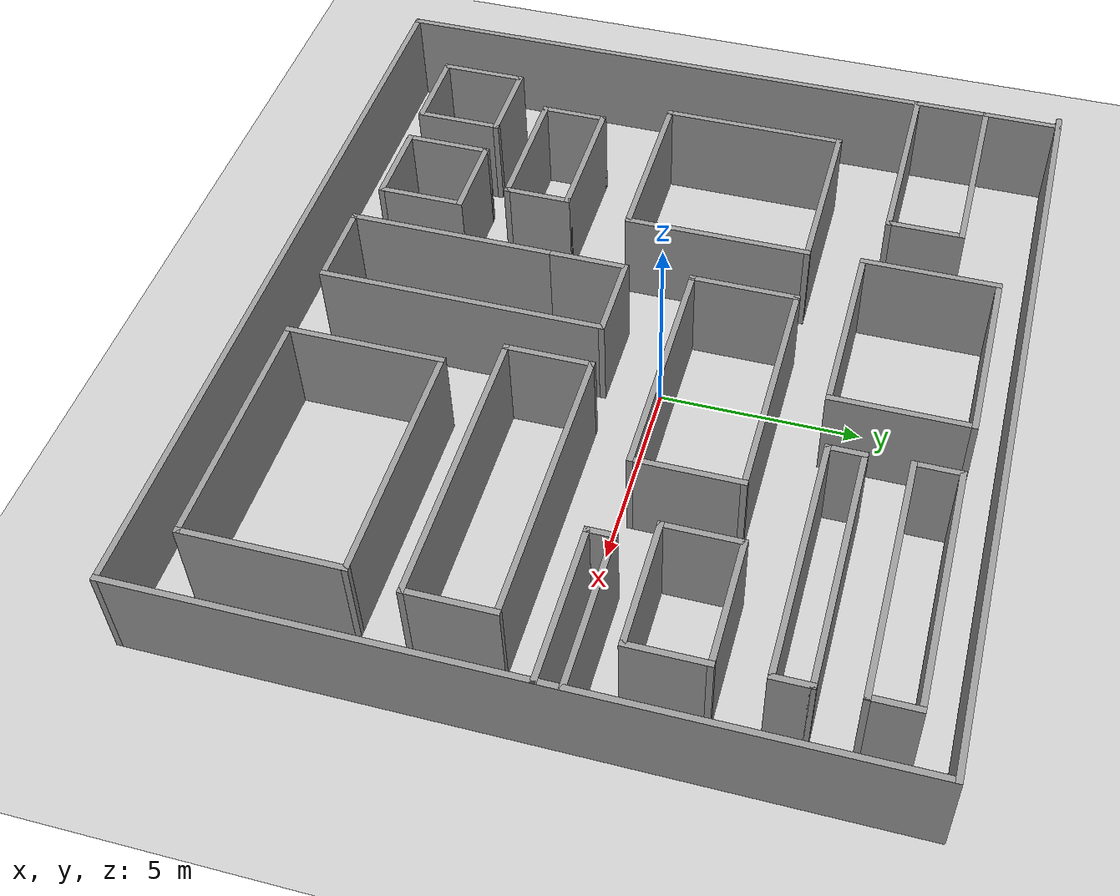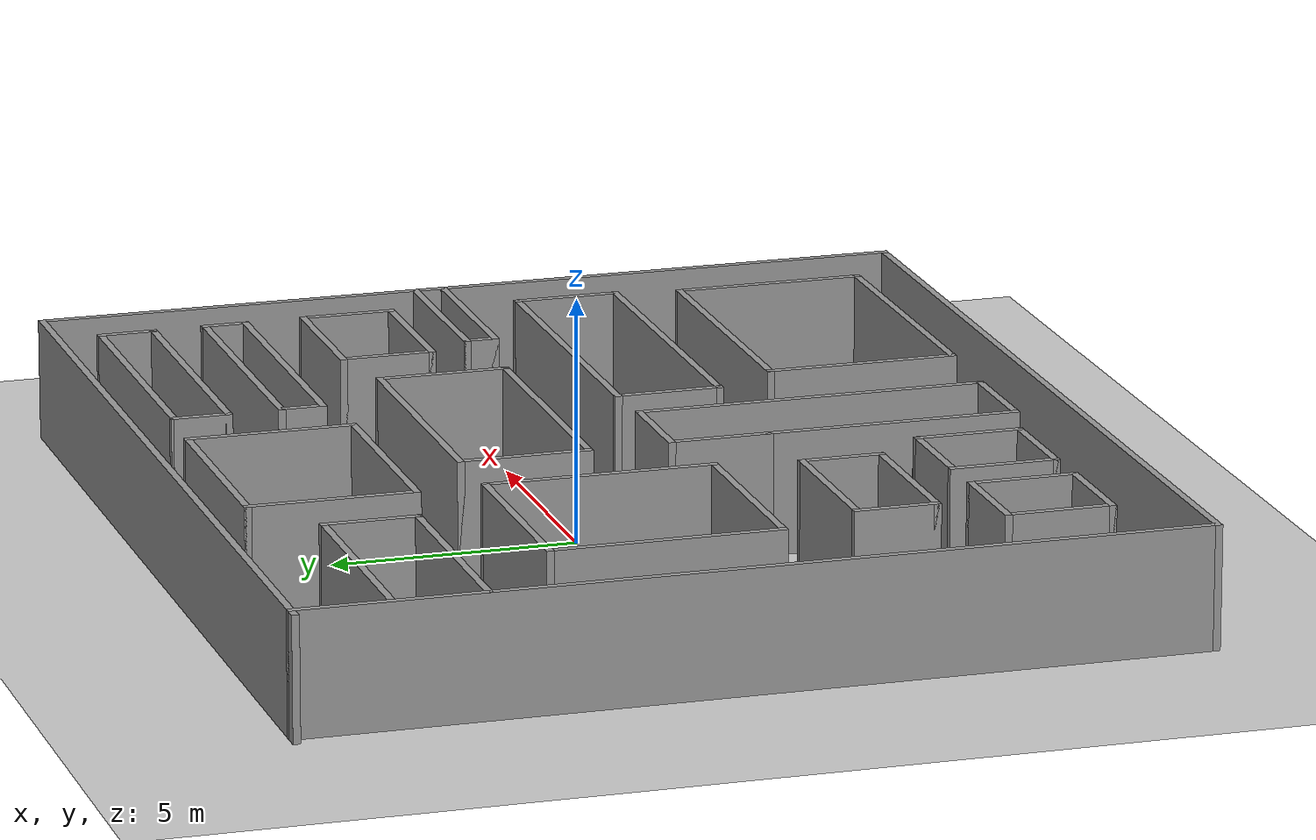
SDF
<sdf version="1.6">
 <world name="default">
  <light name="sun" type="directional">
   <pose>0 0 10 0 -0 0</pose>
   <diffuse>0.8 0.8 0.8 1</diffuse>
   <specular>0.2 0.2 0.2 1</specular>
   <attenuation>
    <range>1000</range>
    <constant>0.9</constant>
    <linear>0.01</linear>
    <quadratic>0.001</quadratic>
   </attenuation>
   <direction>-0.5 0.1 -0.9</direction>
  </light>
  <model name="ground_plane">
   <static>1</static>
   <link name="link">
    <collision name="collision">
     <geometry><plane><normal>0 0 1</normal><size>100 100</size></plane></geometry>
     <surface><friction><ode><mu>100</mu><mu2>50</mu2></ode></friction></surface>
    </collision>
    <visual name="visual">
     <cast_shadows>0</cast_shadows>
     <geometry><plane><normal>0 0 1</normal><size>100 100</size></plane></geometry>
     <material>
      <script><uri>file://media/materials/scripts/gazebo.material</uri><name>Gazebo/Grey</name></script>
     </material>
    </visual>
   </link>
  </model>
  <gravity>0 0 -9.8</gravity>
  <magnetic_field>6e-06 2.3e-05 -4.2e-05</magnetic_field>
  <atmosphere type="adiabatic"/>
  <physics name="default_physics" default="0" type="ode">
   <max_step_size>0.001</max_step_size>
   <real_time_factor>1</real_time_factor>
   <real_time_update_rate>1000</real_time_update_rate>
  </physics>
  <scene><ambient>0.4 0.4 0.4 1</ambient><background>0.7 0.7 0.7 1</background><shadows>1</shadows></scene>
  <spherical_coordinates>
   <surface_model>EARTH_WGS84</surface_model>
   <latitude_deg>0</latitude_deg>
   <longitude_deg>0</longitude_deg>
   <elevation>0</elevation>
   <heading_deg>0</heading_deg>
  </spherical_coordinates>
  <model name="PathifyMap1">
   <pose>-0.083684 -0.647717 0 0 -0 0</pose>
   <link name="Wall_100">
    <collision name="Wall_100_Collision">
     <geometry><box><size>3.25 0.15 2.5</size></box></geometry>
     <pose>0 0 1.25 0 -0 0</pose>
    </collision>
    <visual name="Wall_100_Visual">
     <pose>0 0 1.25 0 -0 0</pose>
     <geometry><box><size>3.25 0.15 2.5</size></box></geometry>
     <material>
      <script><uri>file://media/materials/scripts/gazebo.material</uri><name>Gazebo/Grey</name></script>
      <ambient>1 1 1 1</ambient>
     </material>
     <meta><layer>0</layer></meta>
    </visual>
    <pose>7.20719 3.89076 0 0 -0 3.14159</pose>
   </link>
   <link name="Wall_102">
    <collision name="Wall_102_Collision">
     <geometry><box><size>4 0.15 2.5</size></box></geometry>
     <pose>0 0 1.25 0 -0 0</pose>
    </collision>
    <visual name="Wall_102_Visual">
     <pose>0 0 1.25 0 -0 0</pose>
     <geometry><box><size>4 0.15 2.5</size></box></geometry>
     <material>
      <script><uri>file://media/materials/scripts/gazebo.material</uri><name>Gazebo/Grey</name></script>
      <ambient>1 1 1 1</ambient>
     </material>
     <meta><layer>0</layer></meta>
    </visual>
    <pose>8.1244 1.15549 0 0 -0 3.14159</pose>
   </link>
   <link name="Wall_103">
    <collision name="Wall_103_Collision">
     <geometry><box><size>0.75 0.15 2.5</size></box></geometry>
     <pose>0 0 1.25 0 -0 0</pose>
    </collision>
    <visual name="Wall_103_Visual">
     <pose>0 0 1.25 0 -0 0</pose>
     <geometry><box><size>0.75 0.15 2.5</size></box></geometry>
     <material>
      <script><uri>file://media/materials/scripts/gazebo.material</uri><name>Gazebo/Grey</name></script>
      <ambient>1 1 1 1</ambient>
     </material>
     <meta><layer>0</layer></meta>
    </visual>
    <pose>6.1994 0.855492 0 0 0 -1.5708</pose>
   </link>
   <link name="Wall_104">
    <collision name="Wall_104_Collision">
     <geometry><box><size>4 0.15 2.5</size></box></geometry>
     <pose>0 0 1.25 0 -0 0</pose>
    </collision>
    <visual name="Wall_104_Visual">
     <pose>0 0 1.25 0 -0 0</pose>
     <geometry><box><size>4 0.15 2.5</size></box></geometry>
     <material>
      <script><uri>file://media/materials/scripts/gazebo.material</uri><name>Gazebo/Grey</name></script>
      <ambient>1 1 1 1</ambient>
     </material>
     <meta><layer>0</layer></meta>
    </visual>
    <pose>8.1244 0.555492 0 0 -0 0</pose>
   </link>
   <link name="Wall_20">
    <collision name="Wall_20_Collision">
     <geometry><box><size>20.25 0.15 2.5</size></box></geometry>
     <pose>0 0 1.25 0 -0 0</pose>
    </collision>
    <visual name="Wall_20_Visual">
     <pose>0 0 1.25 0 -0 0</pose>
     <geometry><box><size>20.25 0.15 2.5</size></box></geometry>
     <material>
      <script><uri>file://media/materials/scripts/gazebo.material</uri><name>Gazebo/Grey</name></script>
      <ambient>1 1 1 1</ambient>
     </material>
     <meta><layer>0</layer></meta>
    </visual>
    <pose>0 9.05 0 0 -0 0</pose>
   </link>
   <link name="Wall_21">
    <collision name="Wall_21_Collision">
     <geometry><box><size>18.25 0.15 2.5</size></box></geometry>
     <pose>0 0 1.25 0 -0 0</pose>
    </collision>
    <visual name="Wall_21_Visual">
     <pose>0 0 1.25 0 -0 0</pose>
     <geometry><box><size>18.25 0.15 2.5</size></box></geometry>
     <material>
      <script><uri>file://media/materials/scripts/gazebo.material</uri><name>Gazebo/Grey</name></script>
      <ambient>1 1 1 1</ambient>
     </material>
     <meta><layer>0</layer></meta>
    </visual>
    <pose>10.05 0 0 0 0 -1.5708</pose>
   </link>
   <link name="Wall_22">
    <collision name="Wall_22_Collision">
     <geometry><box><size>20 0.15 2.5</size></box></geometry>
     <pose>0 0 1.25 0 -0 0</pose>
    </collision>
    <visual name="Wall_22_Visual">
     <pose>0 0 1.25 0 -0 0</pose>
     <geometry><box><size>20 0.15 2.5</size></box></geometry>
     <material>
      <script><uri>file://media/materials/scripts/gazebo.material</uri><name>Gazebo/Grey</name></script>
      <ambient>1 1 1 1</ambient>
     </material>
     <meta><layer>0</layer></meta>
    </visual>
    <pose>0.125 -9.05 0 0 -0 3.14159</pose>
   </link>
   <link name="Wall_23">
    <collision name="Wall_23_Collision">
     <geometry><box><size>18.25 0.15 2.5</size></box></geometry>
     <pose>0 0 1.25 0 -0 0</pose>
    </collision>
    <visual name="Wall_23_Visual">
     <pose>0 0 1.25 0 -0 0</pose>
     <geometry><box><size>18.25 0.15 2.5</size></box></geometry>
     <material>
      <script><uri>file://media/materials/scripts/gazebo.material</uri><name>Gazebo/Grey</name></script>
      <ambient>1 1 1 1</ambient>
     </material>
     <meta><layer>0</layer></meta>
    </visual>
    <pose>-9.8 0 0 0 -0 1.5708</pose>
   </link>
   <link name="Wall_30">
    <collision name="Wall_30_Collision">
     <geometry><box><size>2.25 0.15 2.5</size></box></geometry>
     <pose>0 0 1.25 0 -0 0</pose>
    </collision>
    <visual name="Wall_30_Visual">
     <pose>0 0 1.25 0 -0 0</pose>
     <geometry><box><size>2.25 0.15 2.5</size></box></geometry>
     <material>
      <script><uri>file://media/materials/scripts/gazebo.material</uri><name>Gazebo/Grey</name></script>
      <ambient>1 1 1 1</ambient>
     </material>
     <meta><layer>0</layer></meta>
    </visual>
    <pose>-7.00655 -7.5586 0 0 -0 0</pose>
   </link>
   <link name="Wall_31">
    <collision name="Wall_31_Collision">
     <geometry><box><size>2.25 0.15 2.5</size></box></geometry>
     <pose>0 0 1.25 0 -0 0</pose>
    </collision>
    <visual name="Wall_31_Visual">
     <pose>0 0 1.25 0 -0 0</pose>
     <geometry><box><size>2.25 0.15 2.5</size></box></geometry>
     <material>
      <script><uri>file://media/materials/scripts/gazebo.material</uri><name>Gazebo/Grey</name></script>
      <ambient>1 1 1 1</ambient>
     </material>
     <meta><layer>0</layer></meta>
    </visual>
    <pose>-5.95655 -6.5086 0 0 -0 1.5708</pose>
   </link>
   <link name="Wall_32">
    <collision name="Wall_32_Collision">
     <geometry><box><size>2.25 0.15 2.5</size></box></geometry>
     <pose>0 0 1.25 0 -0 0</pose>
    </collision>
    <visual name="Wall_32_Visual">
     <pose>0 0 1.25 0 -0 0</pose>
     <geometry><box><size>2.25 0.15 2.5</size></box></geometry>
     <material>
      <script><uri>file://media/materials/scripts/gazebo.material</uri><name>Gazebo/Grey</name></script>
      <ambient>1 1 1 1</ambient>
     </material>
     <meta><layer>0</layer></meta>
    </visual>
    <pose>-7.00655 -5.4586 0 0 -0 3.14159</pose>
   </link>
   <link name="Wall_33">
    <collision name="Wall_33_Collision">
     <geometry><box><size>2.25 0.15 2.5</size></box></geometry>
     <pose>0 0 1.25 0 -0 0</pose>
    </collision>
    <visual name="Wall_33_Visual">
     <pose>0 0 1.25 0 -0 0</pose>
     <geometry><box><size>2.25 0.15 2.5</size></box></geometry>
     <material>
      <script><uri>file://media/materials/scripts/gazebo.material</uri><name>Gazebo/Grey</name></script>
      <ambient>1 1 1 1</ambient>
     </material>
     <meta><layer>0</layer></meta>
    </visual>
    <pose>-8.05655 -6.5086 0 0 0 -1.5708</pose>
   </link>
   <link name="Wall_36">
    <collision name="Wall_36_Collision">
     <geometry><box><size>2.25 0.15 2.5</size></box></geometry>
     <pose>0 0 1.25 0 -0 0</pose>
    </collision>
    <visual name="Wall_36_Visual">
     <pose>0 0 1.25 0 -0 0</pose>
     <geometry><box><size>2.25 0.15 2.5</size></box></geometry>
     <material>
      <script><uri>file://media/materials/scripts/gazebo.material</uri><name>Gazebo/Grey</name></script>
      <ambient>1 1 1 1</ambient>
     </material>
     <meta><layer>0</layer></meta>
    </visual>
    <pose>-3.89848 -5.42383 0 0 -0 0</pose>
   </link>
   <link name="Wall_37">
    <collision name="Wall_37_Collision">
     <geometry><box><size>2.25 0.15 2.5</size></box></geometry>
     <pose>0 0 1.25 0 -0 0</pose>
    </collision>
    <visual name="Wall_37_Visual">
     <pose>0 0 1.25 0 -0 0</pose>
     <geometry><box><size>2.25 0.15 2.5</size></box></geometry>
     <material>
      <script><uri>file://media/materials/scripts/gazebo.material</uri><name>Gazebo/Grey</name></script>
      <ambient>1 1 1 1</ambient>
     </material>
     <meta><layer>0</layer></meta>
    </visual>
    <pose>-2.84848 -6.47383 0 0 0 -1.5708</pose>
   </link>
   <link name="Wall_38">
    <collision name="Wall_38_Collision">
     <geometry><box><size>2.25 0.15 2.5</size></box></geometry>
     <pose>0 0 1.25 0 -0 0</pose>
    </collision>
    <visual name="Wall_38_Visual">
     <pose>0 0 1.25 0 -0 0</pose>
     <geometry><box><size>2.25 0.15 2.5</size></box></geometry>
     <material>
      <script><uri>file://media/materials/scripts/gazebo.material</uri><name>Gazebo/Grey</name></script>
      <ambient>1 1 1 1</ambient>
     </material>
     <meta><layer>0</layer></meta>
    </visual>
    <pose>-3.89848 -7.52383 0 0 -0 3.14159</pose>
   </link>
   <link name="Wall_39">
    <collision name="Wall_39_Collision">
     <geometry><box><size>2.25 0.15 2.5</size></box></geometry>
     <pose>0 0 1.25 0 -0 0</pose>
    </collision>
    <visual name="Wall_39_Visual">
     <pose>0 0 1.25 0 -0 0</pose>
     <geometry><box><size>2.25 0.15 2.5</size></box></geometry>
     <material>
      <script><uri>file://media/materials/scripts/gazebo.material</uri><name>Gazebo/Grey</name></script>
      <ambient>1 1 1 1</ambient>
     </material>
     <meta><layer>0</layer></meta>
    </visual>
    <pose>-4.94848 -6.47383 0 0 -0 1.5708</pose>
   </link>
   <link name="Wall_41">
    <collision name="Wall_41_Collision">
     <geometry><box><size>3.5 0.15 2.5</size></box></geometry>
     <pose>0 0 1.25 0 -0 0</pose>
    </collision>
    <visual name="Wall_41_Visual">
     <pose>0 0 1.25 0 -0 0</pose>
     <geometry><box><size>3.5 0.15 2.5</size></box></geometry>
     <material>
      <script><uri>file://media/materials/scripts/gazebo.material</uri><name>Gazebo/Grey</name></script>
      <ambient>1 1 1 1</ambient>
     </material>
     <meta><layer>0</layer></meta>
    </visual>
    <pose>-5.32185 -2.79874 0 0 -0 0</pose>
   </link>
   <link name="Wall_42">
    <collision name="Wall_42_Collision">
     <geometry><box><size>1.75 0.15 2.5</size></box></geometry>
     <pose>0 0 1.25 0 -0 0</pose>
    </collision>
    <visual name="Wall_42_Visual">
     <pose>0 0 1.25 0 -0 0</pose>
     <geometry><box><size>1.75 0.15 2.5</size></box></geometry>
     <material>
      <script><uri>file://media/materials/scripts/gazebo.material</uri><name>Gazebo/Grey</name></script>
      <ambient>1 1 1 1</ambient>
     </material>
     <meta><layer>0</layer></meta>
    </visual>
    <pose>-3.64685 -3.59874 0 0 0 -1.5708</pose>
   </link>
   <link name="Wall_43">
    <collision name="Wall_43_Collision">
     <geometry><box><size>3.5 0.15 2.5</size></box></geometry>
     <pose>0 0 1.25 0 -0 0</pose>
    </collision>
    <visual name="Wall_43_Visual">
     <pose>0 0 1.25 0 -0 0</pose>
     <geometry><box><size>3.5 0.15 2.5</size></box></geometry>
     <material>
      <script><uri>file://media/materials/scripts/gazebo.material</uri><name>Gazebo/Grey</name></script>
      <ambient>1 1 1 1</ambient>
     </material>
     <meta><layer>0</layer></meta>
    </visual>
    <pose>-5.32185 -4.39874 0 0 -0 3.14159</pose>
   </link>
   <link name="Wall_44">
    <collision name="Wall_44_Collision">
     <geometry><box><size>1.75 0.15 2.5</size></box></geometry>
     <pose>0 0 1.25 0 -0 0</pose>
    </collision>
    <visual name="Wall_44_Visual">
     <pose>0 0 1.25 0 -0 0</pose>
     <geometry><box><size>1.75 0.15 2.5</size></box></geometry>
     <material>
      <script><uri>file://media/materials/scripts/gazebo.material</uri><name>Gazebo/Grey</name></script>
      <ambient>1 1 1 1</ambient>
     </material>
     <meta><layer>0</layer></meta>
    </visual>
    <pose>-6.99685 -3.59874 0 0 -0 1.5708</pose>
   </link>
   <link name="Wall_49">
    <collision name="Wall_49_Collision">
     <geometry><box><size>5.25 0.15 2.5</size></box></geometry>
     <pose>0 0 1.25 0 -0 0</pose>
    </collision>
    <visual name="Wall_49_Visual">
     <pose>0 0 1.25 0 -0 0</pose>
     <geometry><box><size>5.25 0.15 2.5</size></box></geometry>
     <material>
      <script><uri>file://media/materials/scripts/gazebo.material</uri><name>Gazebo/Grey</name></script>
      <ambient>1 1 1 1</ambient>
     </material>
     <meta><layer>0</layer></meta>
    </visual>
    <pose>-1.70689 -5.28908 0 0 0 -1.5708</pose>
   </link>
   <link name="Wall_50">
    <collision name="Wall_50_Collision">
     <geometry><box><size>2.25 0.15 2.5</size></box></geometry>
     <pose>0 0 1.25 0 -0 0</pose>
    </collision>
    <visual name="Wall_50_Visual">
     <pose>0 0 1.25 0 -0 0</pose>
     <geometry><box><size>2.25 0.15 2.5</size></box></geometry>
     <material>
      <script><uri>file://media/materials/scripts/gazebo.material</uri><name>Gazebo/Grey</name></script>
      <ambient>1 1 1 1</ambient>
     </material>
     <meta><layer>0</layer></meta>
    </visual>
    <pose>-0.656888 -7.83908 0 0 -0 0</pose>
   </link>
   <link name="Wall_51">
    <collision name="Wall_51_Collision">
     <geometry><box><size>7.25 0.15 2.5</size></box></geometry>
     <pose>0 0 1.25 0 -0 0</pose>
    </collision>
    <visual name="Wall_51_Visual">
     <pose>0 0 1.25 0 -0 0</pose>
     <geometry><box><size>7.25 0.15 2.5</size></box></geometry>
     <material>
      <script><uri>file://media/materials/scripts/gazebo.material</uri><name>Gazebo/Grey</name></script>
      <ambient>1 1 1 1</ambient>
     </material>
     <meta><layer>0</layer></meta>
    </visual>
    <pose>0.393112 -4.28908 0 0 -0 1.5708</pose>
   </link>
   <link name="Wall_52">
    <collision name="Wall_52_Collision">
     <geometry><box><size>2.25 0.15 2.5</size></box></geometry>
     <pose>0 0 1.25 0 -0 0</pose>
    </collision>
    <visual name="Wall_52_Visual">
     <pose>0 0 1.25 0 -0 0</pose>
     <geometry><box><size>2.25 0.15 2.5</size></box></geometry>
     <material>
      <script><uri>file://media/materials/scripts/gazebo.material</uri><name>Gazebo/Grey</name></script>
      <ambient>1 1 1 1</ambient>
     </material>
     <meta><layer>0</layer></meta>
    </visual>
    <pose>-0.656888 -0.739077 0 0 -0 3.14159</pose>
   </link>
   <link name="Wall_53">
    <collision name="Wall_53_Collision">
     <geometry><box><size>2.15 0.15 2.5</size></box></geometry>
     <pose>0 0 1.25 0 -0 0</pose>
    </collision>
    <visual name="Wall_53_Visual">
     <pose>0 0 1.25 0 -0 0</pose>
     <geometry><box><size>2.15 0.15 2.5</size></box></geometry>
     <material>
      <script><uri>file://media/materials/scripts/gazebo.material</uri><name>Gazebo/Grey</name></script>
      <ambient>1 1 1 1</ambient>
     </material>
     <meta><layer>0</layer></meta>
    </visual>
    <pose>-1.70689 -1.73908 0 0 0 -1.5708</pose>
   </link>
   <link name="Wall_55">
    <collision name="Wall_55_Collision">
     <geometry><box><size>7.25 0.15 2.5</size></box></geometry>
     <pose>0 0 1.25 0 -0 0</pose>
    </collision>
    <visual name="Wall_55_Visual">
     <pose>0 0 1.25 0 -0 0</pose>
     <geometry><box><size>7.25 0.15 2.5</size></box></geometry>
     <material>
      <script><uri>file://media/materials/scripts/gazebo.material</uri><name>Gazebo/Grey</name></script>
      <ambient>1 1 1 1</ambient>
     </material>
     <meta><layer>0</layer></meta>
    </visual>
    <pose>5.14437 -0.650934 0 0 -0 0</pose>
   </link>
   <link name="Wall_56">
    <collision name="Wall_56_Collision">
     <geometry><box><size>2.25 0.15 2.5</size></box></geometry>
     <pose>0 0 1.25 0 -0 0</pose>
    </collision>
    <visual name="Wall_56_Visual">
     <pose>0 0 1.25 0 -0 0</pose>
     <geometry><box><size>2.25 0.15 2.5</size></box></geometry>
     <material>
      <script><uri>file://media/materials/scripts/gazebo.material</uri><name>Gazebo/Grey</name></script>
      <ambient>1 1 1 1</ambient>
     </material>
     <meta><layer>0</layer></meta>
    </visual>
    <pose>8.69437 -1.70093 0 0 0 -1.5708</pose>
   </link>
   <link name="Wall_57">
    <collision name="Wall_57_Collision">
     <geometry><box><size>7.25 0.15 2.5</size></box></geometry>
     <pose>0 0 1.25 0 -0 0</pose>
    </collision>
    <visual name="Wall_57_Visual">
     <pose>0 0 1.25 0 -0 0</pose>
     <geometry><box><size>7.25 0.15 2.5</size></box></geometry>
     <material>
      <script><uri>file://media/materials/scripts/gazebo.material</uri><name>Gazebo/Grey</name></script>
      <ambient>1 1 1 1</ambient>
     </material>
     <meta><layer>0</layer></meta>
    </visual>
    <pose>5.14437 -2.75093 0 0 -0 3.14159</pose>
   </link>
   <link name="Wall_58">
    <collision name="Wall_58_Collision">
     <geometry><box><size>2.25 0.15 2.5</size></box></geometry>
     <pose>0 0 1.25 0 -0 0</pose>
    </collision>
    <visual name="Wall_58_Visual">
     <pose>0 0 1.25 0 -0 0</pose>
     <geometry><box><size>2.25 0.15 2.5</size></box></geometry>
     <material>
      <script><uri>file://media/materials/scripts/gazebo.material</uri><name>Gazebo/Grey</name></script>
      <ambient>1 1 1 1</ambient>
     </material>
     <meta><layer>0</layer></meta>
    </visual>
    <pose>1.59437 -1.70093 0 0 -0 1.5708</pose>
   </link>
   <link name="Wall_62">
    <collision name="Wall_62_Collision">
     <geometry><box><size>4 0.15 2.5</size></box></geometry>
     <pose>0 0 1.25 0 -0 0</pose>
    </collision>
    <visual name="Wall_62_Visual">
     <pose>0 0 1.25 0 -0 0</pose>
     <geometry><box><size>4 0.15 2.5</size></box></geometry>
     <material>
      <script><uri>file://media/materials/scripts/gazebo.material</uri><name>Gazebo/Grey</name></script>
      <ambient>1 1 1 1</ambient>
     </material>
     <meta><layer>0</layer></meta>
    </visual>
    <pose>2.36996 -5.99651 0 0 0 -1.5708</pose>
   </link>
   <link name="Wall_63">
    <collision name="Wall_63_Collision">
     <geometry><box><size>6.25 0.15 2.5</size></box></geometry>
     <pose>0 0 1.25 0 -0 0</pose>
    </collision>
    <visual name="Wall_63_Visual">
     <pose>0 0 1.25 0 -0 0</pose>
     <geometry><box><size>6.25 0.15 2.5</size></box></geometry>
     <material>
      <script><uri>file://media/materials/scripts/gazebo.material</uri><name>Gazebo/Grey</name></script>
      <ambient>1 1 1 1</ambient>
     </material>
     <meta><layer>0</layer></meta>
    </visual>
    <pose>5.41996 -7.92151 0 0 -0 0</pose>
   </link>
   <link name="Wall_64">
    <collision name="Wall_64_Collision">
     <geometry><box><size>4 0.15 2.5</size></box></geometry>
     <pose>0 0 1.25 0 -0 0</pose>
    </collision>
    <visual name="Wall_64_Visual">
     <pose>0 0 1.25 0 -0 0</pose>
     <geometry><box><size>4 0.15 2.5</size></box></geometry>
     <material>
      <script><uri>file://media/materials/scripts/gazebo.material</uri><name>Gazebo/Grey</name></script>
      <ambient>1 1 1 1</ambient>
     </material>
     <meta><layer>0</layer></meta>
    </visual>
    <pose>8.46996 -5.99651 0 0 -0 1.5708</pose>
   </link>
   <link name="Wall_65">
    <collision name="Wall_65_Collision">
     <geometry><box><size>6.25 0.15 2.5</size></box></geometry>
     <pose>0 0 1.25 0 -0 0</pose>
    </collision>
    <visual name="Wall_65_Visual">
     <pose>0 0 1.25 0 -0 0</pose>
     <geometry><box><size>6.25 0.15 2.5</size></box></geometry>
     <material>
      <script><uri>file://media/materials/scripts/gazebo.material</uri><name>Gazebo/Grey</name></script>
      <ambient>1 1 1 1</ambient>
     </material>
     <meta><layer>0</layer></meta>
    </visual>
    <pose>5.41996 -4.07151 0 0 -0 3.14159</pose>
   </link>
   <link name="Wall_67">
    <collision name="Wall_67_Collision">
     <geometry><box><size>4.75 0.15 2.5</size></box></geometry>
     <pose>0 0 1.25 0 -0 0</pose>
    </collision>
    <visual name="Wall_67_Visual">
     <pose>0 0 1.25 0 -0 0</pose>
     <geometry><box><size>4.75 0.15 2.5</size></box></geometry>
     <material>
      <script><uri>file://media/materials/scripts/gazebo.material</uri><name>Gazebo/Grey</name></script>
      <ambient>1 1 1 1</ambient>
     </material>
     <meta><layer>0</layer></meta>
    </visual>
    <pose>-7.70354 1.19625 0 0 0 -1.5708</pose>
   </link>
   <link name="Wall_68">
    <collision name="Wall_68_Collision">
     <geometry><box><size>4.5 0.15 2.5</size></box></geometry>
     <pose>0 0 1.25 0 -0 0</pose>
    </collision>
    <visual name="Wall_68_Visual">
     <pose>0 0 1.25 0 -0 0</pose>
     <geometry><box><size>4.5 0.15 2.5</size></box></geometry>
     <material>
      <script><uri>file://media/materials/scripts/gazebo.material</uri><name>Gazebo/Grey</name></script>
      <ambient>1 1 1 1</ambient>
     </material>
     <meta><layer>0</layer></meta>
    </visual>
    <pose>-5.52854 -1.10375 0 0 -0 0</pose>
   </link>
   <link name="Wall_69">
    <collision name="Wall_69_Collision">
     <geometry><box><size>4.75 0.15 2.5</size></box></geometry>
     <pose>0 0 1.25 0 -0 0</pose>
    </collision>
    <visual name="Wall_69_Visual">
     <pose>0 0 1.25 0 -0 0</pose>
     <geometry><box><size>4.75 0.15 2.5</size></box></geometry>
     <material>
      <script><uri>file://media/materials/scripts/gazebo.material</uri><name>Gazebo/Grey</name></script>
      <ambient>1 1 1 1</ambient>
     </material>
     <meta><layer>0</layer></meta>
    </visual>
    <pose>-3.35354 1.19625 0 0 -0 1.5708</pose>
   </link>
   <link name="Wall_70">
    <collision name="Wall_70_Collision">
     <geometry><box><size>4.5 0.15 2.5</size></box></geometry>
     <pose>0 0 1.25 0 -0 0</pose>
    </collision>
    <visual name="Wall_70_Visual">
     <pose>0 0 1.25 0 -0 0</pose>
     <geometry><box><size>4.5 0.15 2.5</size></box></geometry>
     <material>
      <script><uri>file://media/materials/scripts/gazebo.material</uri><name>Gazebo/Grey</name></script>
      <ambient>1 1 1 1</ambient>
     </material>
     <meta><layer>0</layer></meta>
    </visual>
    <pose>-5.52854 3.49625 0 0 -0 3.14159</pose>
   </link>
   <link name="Wall_72">
    <collision name="Wall_72_Collision">
     <geometry><box><size>2.75 0.15 2.5</size></box></geometry>
     <pose>0 0 1.25 0 -0 0</pose>
    </collision>
    <visual name="Wall_72_Visual">
     <pose>0 0 1.25 0 -0 0</pose>
     <geometry><box><size>2.75 0.15 2.5</size></box></geometry>
     <material>
      <script><uri>file://media/materials/scripts/gazebo.material</uri><name>Gazebo/Grey</name></script>
      <ambient>1 1 1 1</ambient>
     </material>
     <meta><layer>0</layer></meta>
    </visual>
    <pose>-1.75959 2.24885 0 0 0 -1.5708</pose>
   </link>
   <link name="Wall_73">
    <collision name="Wall_73_Collision">
     <geometry><box><size>6 0.15 2.5</size></box></geometry>
     <pose>0 0 1.25 0 -0 0</pose>
    </collision>
    <visual name="Wall_73_Visual">
     <pose>0 0 1.25 0 -0 0</pose>
     <geometry><box><size>6 0.15 2.5</size></box></geometry>
     <material>
      <script><uri>file://media/materials/scripts/gazebo.material</uri><name>Gazebo/Grey</name></script>
      <ambient>1 1 1 1</ambient>
     </material>
     <meta><layer>0</layer></meta>
    </visual>
    <pose>1.16541 0.948851 0 0 -0 0</pose>
   </link>
   <link name="Wall_74">
    <collision name="Wall_74_Collision">
     <geometry><box><size>2.75 0.15 2.5</size></box></geometry>
     <pose>0 0 1.25 0 -0 0</pose>
    </collision>
    <visual name="Wall_74_Visual">
     <pose>0 0 1.25 0 -0 0</pose>
     <geometry><box><size>2.75 0.15 2.5</size></box></geometry>
     <material>
      <script><uri>file://media/materials/scripts/gazebo.material</uri><name>Gazebo/Grey</name></script>
      <ambient>1 1 1 1</ambient>
     </material>
     <meta><layer>0</layer></meta>
    </visual>
    <pose>4.0904 2.24885 0 0 -0 1.5708</pose>
   </link>
   <link name="Wall_75">
    <collision name="Wall_75_Collision">
     <geometry><box><size>6 0.15 2.5</size></box></geometry>
     <pose>0 0 1.25 0 -0 0</pose>
    </collision>
    <visual name="Wall_75_Visual">
     <pose>0 0 1.25 0 -0 0</pose>
     <geometry><box><size>6 0.15 2.5</size></box></geometry>
     <material>
      <script><uri>file://media/materials/scripts/gazebo.material</uri><name>Gazebo/Grey</name></script>
      <ambient>1 1 1 1</ambient>
     </material>
     <meta><layer>0</layer></meta>
    </visual>
    <pose>1.16541 3.54885 0 0 -0 3.14159</pose>
   </link>
   <link name="Wall_77">
    <collision name="Wall_77_Collision">
     <geometry><box><size>5 0.15 2.5</size></box></geometry>
     <pose>0 0 1.25 0 -0 0</pose>
    </collision>
    <visual name="Wall_77_Visual">
     <pose>0 0 1.25 0 -0 0</pose>
     <geometry><box><size>5 0.15 2.5</size></box></geometry>
     <material>
      <script><uri>file://media/materials/scripts/gazebo.material</uri><name>Gazebo/Grey</name></script>
      <ambient>1 1 1 1</ambient>
     </material>
     <meta><layer>0</layer></meta>
    </visual>
    <pose>-7.35629 7.12574 0 0 -0 0</pose>
   </link>
   <link name="Wall_78">
    <collision name="Wall_78_Collision">
     <geometry><box><size>2 0.15 2.5</size></box></geometry>
     <pose>0 0 1.25 0 -0 0</pose>
    </collision>
    <visual name="Wall_78_Visual">
     <pose>0 0 1.25 0 -0 0</pose>
     <geometry><box><size>2 0.15 2.5</size></box></geometry>
     <material>
      <script><uri>file://media/materials/scripts/gazebo.material</uri><name>Gazebo/Grey</name></script>
      <ambient>1 1 1 1</ambient>
     </material>
     <meta><layer>0</layer></meta>
    </visual>
    <pose>-4.93129 6.20074 0 0 0 -1.5708</pose>
   </link>
   <link name="Wall_79">
    <collision name="Wall_79_Collision">
     <geometry><box><size>5 0.15 2.5</size></box></geometry>
     <pose>0 0 1.25 0 -0 0</pose>
    </collision>
    <visual name="Wall_79_Visual">
     <pose>0 0 1.25 0 -0 0</pose>
     <geometry><box><size>5 0.15 2.5</size></box></geometry>
     <material>
      <script><uri>file://media/materials/scripts/gazebo.material</uri><name>Gazebo/Grey</name></script>
      <ambient>1 1 1 1</ambient>
     </material>
     <meta><layer>0</layer></meta>
    </visual>
    <pose>-7.35629 5.27574 0 0 -0 3.14159</pose>
   </link>
   <link name="Wall_81">
    <collision name="Wall_81_Collision">
     <geometry><box><size>3.5 0.15 2.5</size></box></geometry>
     <pose>0 0 1.25 0 -0 0</pose>
    </collision>
    <visual name="Wall_81_Visual">
     <pose>0 0 1.25 0 -0 0</pose>
     <geometry><box><size>3.5 0.15 2.5</size></box></geometry>
     <material>
      <script><uri>file://media/materials/scripts/gazebo.material</uri><name>Gazebo/Grey</name></script>
      <ambient>1 1 1 1</ambient>
     </material>
     <meta><layer>0</layer></meta>
    </visual>
    <pose>-3.41654 6.55537 0 0 0 -1.5708</pose>
   </link>
   <link name="Wall_82">
    <collision name="Wall_82_Collision">
     <geometry><box><size>4.75 0.15 2.5</size></box></geometry>
     <pose>0 0 1.25 0 -0 0</pose>
    </collision>
    <visual name="Wall_82_Visual">
     <pose>0 0 1.25 0 -0 0</pose>
     <geometry><box><size>4.75 0.15 2.5</size></box></geometry>
     <material>
      <script><uri>file://media/materials/scripts/gazebo.material</uri><name>Gazebo/Grey</name></script>
      <ambient>1 1 1 1</ambient>
     </material>
     <meta><layer>0</layer></meta>
    </visual>
    <pose>-1.11654 4.88037 0 0 -0 0</pose>
   </link>
   <link name="Wall_83">
    <collision name="Wall_83_Collision">
     <geometry><box><size>3.5 0.15 2.5</size></box></geometry>
     <pose>0 0 1.25 0 -0 0</pose>
    </collision>
    <visual name="Wall_83_Visual">
     <pose>0 0 1.25 0 -0 0</pose>
     <geometry><box><size>3.5 0.15 2.5</size></box></geometry>
     <material>
      <script><uri>file://media/materials/scripts/gazebo.material</uri><name>Gazebo/Grey</name></script>
      <ambient>1 1 1 1</ambient>
     </material>
     <meta><layer>0</layer></meta>
    </visual>
    <pose>1.18346 6.55537 0 0 -0 1.5708</pose>
   </link>
   <link name="Wall_84">
    <collision name="Wall_84_Collision">
     <geometry><box><size>4.75 0.15 2.5</size></box></geometry>
     <pose>0 0 1.25 0 -0 0</pose>
    </collision>
    <visual name="Wall_84_Visual">
     <pose>0 0 1.25 0 -0 0</pose>
     <geometry><box><size>4.75 0.15 2.5</size></box></geometry>
     <material>
      <script><uri>file://media/materials/scripts/gazebo.material</uri><name>Gazebo/Grey</name></script>
      <ambient>1 1 1 1</ambient>
     </material>
     <meta><layer>0</layer></meta>
    </visual>
    <pose>-1.11654 8.23037 0 0 -0 3.14159</pose>
   </link>
   <link name="Wall_86">
    <collision name="Wall_86_Collision">
     <geometry><box><size>6.25 0.15 2.5</size></box></geometry>
     <pose>0 0 1.25 0 -0 0</pose>
    </collision>
    <visual name="Wall_86_Visual">
     <pose>0 0 1.25 0 -0 0</pose>
     <geometry><box><size>6.25 0.15 2.5</size></box></geometry>
     <material>
      <script><uri>file://media/materials/scripts/gazebo.material</uri><name>Gazebo/Grey</name></script>
      <ambient>1 1 1 1</ambient>
     </material>
     <meta><layer>0</layer></meta>
    </visual>
    <pose>5.65631 8.15146 0 0 -0 0</pose>
   </link>
   <link name="Wall_87">
    <collision name="Wall_87_Collision">
     <geometry><box><size>1.25 0.15 2.5</size></box></geometry>
     <pose>0 0 1.25 0 -0 0</pose>
    </collision>
    <visual name="Wall_87_Visual">
     <pose>0 0 1.25 0 -0 0</pose>
     <geometry><box><size>1.25 0.15 2.5</size></box></geometry>
     <material>
      <script><uri>file://media/materials/scripts/gazebo.material</uri><name>Gazebo/Grey</name></script>
      <ambient>1 1 1 1</ambient>
     </material>
     <meta><layer>0</layer></meta>
    </visual>
    <pose>8.70631 7.60147 0 0 0 -1.5708</pose>
   </link>
   <link name="Wall_88">
    <collision name="Wall_88_Collision">
     <geometry><box><size>6.25 0.15 2.5</size></box></geometry>
     <pose>0 0 1.25 0 -0 0</pose>
    </collision>
    <visual name="Wall_88_Visual">
     <pose>0 0 1.25 0 -0 0</pose>
     <geometry><box><size>6.25 0.15 2.5</size></box></geometry>
     <material>
      <script><uri>file://media/materials/scripts/gazebo.material</uri><name>Gazebo/Grey</name></script>
      <ambient>1 1 1 1</ambient>
     </material>
     <meta><layer>0</layer></meta>
    </visual>
    <pose>5.65631 7.05147 0 0 -0 3.14159</pose>
   </link>
   <link name="Wall_89">
    <collision name="Wall_89_Collision">
     <geometry><box><size>1.25 0.15 2.5</size></box></geometry>
     <pose>0 0 1.25 0 -0 0</pose>
    </collision>
    <visual name="Wall_89_Visual">
     <pose>0 0 1.25 0 -0 0</pose>
     <geometry><box><size>1.25 0.15 2.5</size></box></geometry>
     <material>
      <script><uri>file://media/materials/scripts/gazebo.material</uri><name>Gazebo/Grey</name></script>
      <ambient>1 1 1 1</ambient>
     </material>
     <meta><layer>0</layer></meta>
    </visual>
    <pose>2.60631 7.60147 0 0 -0 1.5708</pose>
   </link>
   <link name="Wall_92">
    <collision name="Wall_92_Collision">
     <geometry><box><size>1 0.15 2.5</size></box></geometry>
     <pose>0 0 1.25 0 -0 0</pose>
    </collision>
    <visual name="Wall_92_Visual">
     <pose>0 0 1.25 0 -0 0</pose>
     <geometry><box><size>1 0.15 2.5</size></box></geometry>
     <material>
      <script><uri>file://media/materials/scripts/gazebo.material</uri><name>Gazebo/Grey</name></script>
      <ambient>1 1 1 1</ambient>
     </material>
     <meta><layer>0</layer></meta>
    </visual>
    <pose>2.63261 5.54351 0 0 0 -1.5708</pose>
   </link>
   <link name="Wall_93">
    <collision name="Wall_93_Collision">
     <geometry><box><size>6.25 0.15 2.5</size></box></geometry>
     <pose>0 0 1.25 0 -0 0</pose>
    </collision>
    <visual name="Wall_93_Visual">
     <pose>0 0 1.25 0 -0 0</pose>
     <geometry><box><size>6.25 0.15 2.5</size></box></geometry>
     <material>
      <script><uri>file://media/materials/scripts/gazebo.material</uri><name>Gazebo/Grey</name></script>
      <ambient>1 1 1 1</ambient>
     </material>
     <meta><layer>0</layer></meta>
    </visual>
    <pose>5.68261 5.11851 0 0 -0 0</pose>
   </link>
   <link name="Wall_94">
    <collision name="Wall_94_Collision">
     <geometry><box><size>1 0.15 2.5</size></box></geometry>
     <pose>0 0 1.25 0 -0 0</pose>
    </collision>
    <visual name="Wall_94_Visual">
     <pose>0 0 1.25 0 -0 0</pose>
     <geometry><box><size>1 0.15 2.5</size></box></geometry>
     <material>
      <script><uri>file://media/materials/scripts/gazebo.material</uri><name>Gazebo/Grey</name></script>
      <ambient>1 1 1 1</ambient>
     </material>
     <meta><layer>0</layer></meta>
    </visual>
    <pose>8.73261 5.54351 0 0 -0 1.5708</pose>
   </link>
   <link name="Wall_95">
    <collision name="Wall_95_Collision">
     <geometry><box><size>6.25 0.15 2.5</size></box></geometry>
     <pose>0 0 1.25 0 -0 0</pose>
    </collision>
    <visual name="Wall_95_Visual">
     <pose>0 0 1.25 0 -0 0</pose>
     <geometry><box><size>6.25 0.15 2.5</size></box></geometry>
     <material>
      <script><uri>file://media/materials/scripts/gazebo.material</uri><name>Gazebo/Grey</name></script>
      <ambient>1 1 1 1</ambient>
     </material>
     <meta><layer>0</layer></meta>
    </visual>
    <pose>5.68261 5.96851 0 0 -0 3.14159</pose>
   </link>
   <link name="Wall_97">
    <collision name="Wall_97_Collision">
     <geometry><box><size>2 0.15 2.5</size></box></geometry>
     <pose>0 0 1.25 0 -0 0</pose>
    </collision>
    <visual name="Wall_97_Visual">
     <pose>0 0 1.25 0 -0 0</pose>
     <geometry><box><size>2 0.15 2.5</size></box></geometry>
     <material>
      <script><uri>file://media/materials/scripts/gazebo.material</uri><name>Gazebo/Grey</name></script>
      <ambient>1 1 1 1</ambient>
     </material>
     <meta><layer>0</layer></meta>
    </visual>
    <pose>5.65719 2.96576 0 0 0 -1.5708</pose>
   </link>
   <link name="Wall_98">
    <collision name="Wall_98_Collision">
     <geometry><box><size>3.25 0.15 2.5</size></box></geometry>
     <pose>0 0 1.25 0 -0 0</pose>
    </collision>
    <visual name="Wall_98_Visual">
     <pose>0 0 1.25 0 -0 0</pose>
     <geometry><box><size>3.25 0.15 2.5</size></box></geometry>
     <material>
      <script><uri>file://media/materials/scripts/gazebo.material</uri><name>Gazebo/Grey</name></script>
      <ambient>1 1 1 1</ambient>
     </material>
     <meta><layer>0</layer></meta>
    </visual>
    <pose>7.20719 2.04076 0 0 -0 0</pose>
   </link>
   <link name="Wall_99">
    <collision name="Wall_99_Collision">
     <geometry><box><size>2 0.15 2.5</size></box></geometry>
     <pose>0 0 1.25 0 -0 0</pose>
    </collision>
    <visual name="Wall_99_Visual">
     <pose>0 0 1.25 0 -0 0</pose>
     <geometry><box><size>2 0.15 2.5</size></box></geometry>
     <material>
      <script><uri>file://media/materials/scripts/gazebo.material</uri><name>Gazebo/Grey</name></script>
      <ambient>1 1 1 1</ambient>
     </material>
     <meta><layer>0</layer></meta>
    </visual>
    <pose>8.75719 2.96576 0 0 -0 1.5708</pose>
   </link>
   <static>1</static>
  </model>
 </world>
</sdf>
